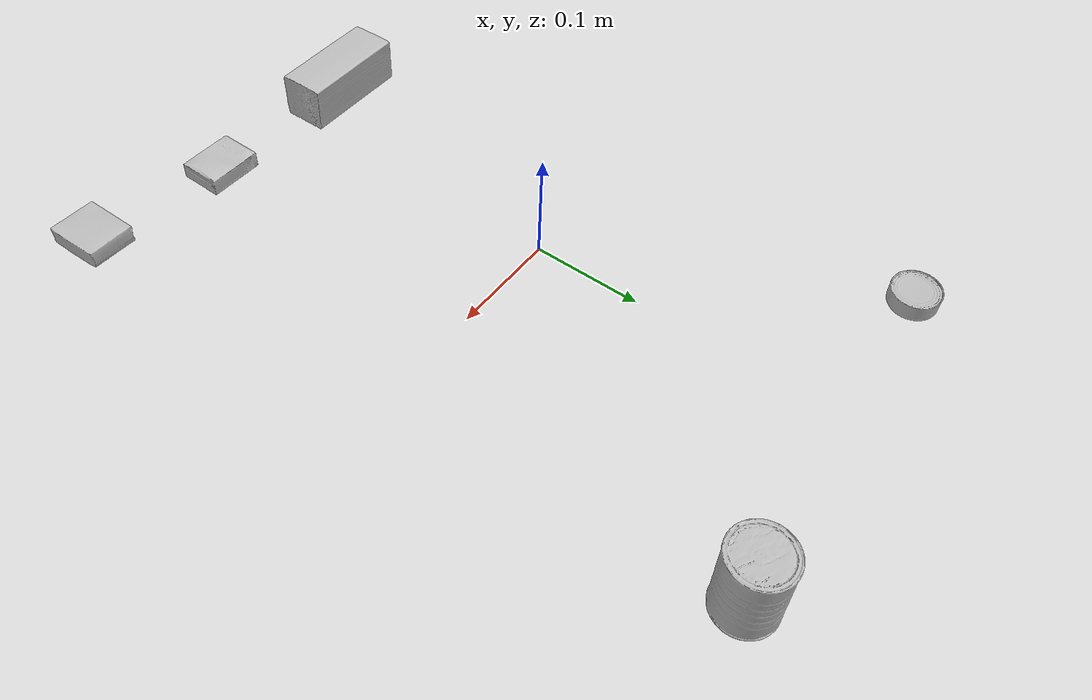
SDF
<?xml version="1.0" ?>
<sdf version="1.4">
  <world name="default">
    <light name="light1" type="point">
      <pose>0 0 1 0 0 0</pose>
      <diffuse>3 3 3 1</diffuse>
      <specular>3 3 3 1</specular>
    </light>
    <light name="light2" type="point">
      <pose>0 0.5 2 0 0 0</pose>
      <diffuse>1 1 1 1</diffuse>
      <specular>1 1 1 1</specular>
    </light>
    <light name="light3" type="point">
      <pose>0 0.5 2 0 0 0</pose>
      <diffuse>3 3 3 1</diffuse>
      <specular>3 3 3 1</specular>
    </light>
    <scene>
      <ambient>0.7 0.7 0.7</ambient>
    </scene>
    <model name="box1">
      <link name="link_box1">
        <collision name="default">
          <geometry>
            <mesh>
              <uri>model://pudding_box/collision_meshes/collision.obj</uri>
              <scale>0.5 0.5 0.5</scale>
            </mesh>
          </geometry>
          <surface>
            <friction>
              <ode>
                <mu>0.5</mu>
                <mu2>0.5</mu2>
              </ode>
            </friction>
          </surface>
        </collision>
        <visual name="default">
          <geometry>
            <mesh>
              <uri>model://pudding_box/visual_meshes/visual.dae</uri>
              <scale>0.5 0.5 0.5</scale>
            </mesh>
          </geometry>
        </visual>
        <inertial>
          <mass>0.03999795392155647</mass>
          <pose>0.00024474109522998333 0.0004033942532259971 -0.0002594413817860186 0.005213101299265121 -0.006603799659933957 0.020079830747700592</pose>
          <inertia>
            <ixx>1.1303907e-05</ixx>
            <iyy>7.605349e-06</iyy>
            <izz>1.6693173e-05</izz>
            <ixy>0</ixy>
            <ixz>0</ixz>
            <iyz>0</iyz>
          </inertia>
        </inertial>
      </link>
      <pose>0.22974133491516113 -0.3102520704269409 0.009862901642918587 0.022348696039720884 -0.011391630201809652 -9.534502178148313e-05</pose>
    </model>
    <model name="box2">
      <link name="link_box2">
        <collision name="default">
          <geometry>
            <mesh>
              <uri>model://cracker_box/collision_meshes/collision.obj</uri>
              <scale>0.25 0.25 0.25</scale>
            </mesh>
          </geometry>
          <surface>
            <friction>
              <ode>
                <mu>0.5</mu>
                <mu2>0.5</mu2>
              </ode>
            </friction>
          </surface>
        </collision>
        <visual name="default">
          <geometry>
            <mesh>
              <uri>model://cracker_box/visual_meshes/visual.dae</uri>
              <scale>0.25 0.25 0.25</scale>
            </mesh>
          </geometry>
        </visual>
        <inertial>
          <mass>0.046595875173807144</mass>
          <pose>0.00023660322767682374 6.358561950037256e-05 -0.0004257383698131889 -0.00031620768958073674 -0.011106491463008503 0.002546795235494827</pose>
          <inertia>
            <ixx>7.407444e-06</ixx>
            <iyy>1.2231146e-05</iyy>
            <izz>1.7454966e-05</izz>
            <ixy>0</ixy>
            <ixz>0</ixz>
            <iyz>0</iyz>
          </inertia>
        </inertial>
      </link>
      <pose>0.09993371367454529 -0.2898489832878113 0.009120453149080276 -0.011788122153615844 -0.007367107263715674 5.289334468071867e-05</pose>
    </model>
    <model name="box3">
      <link name="link_box3">
        <collision name="default">
          <geometry>
            <mesh>
              <uri>model://wood_block/collision_meshes/collision.obj</uri>
              <scale>0.5 0.5 0.5</scale>
            </mesh>
          </geometry>
          <surface>
            <friction>
              <ode>
                <mu>0.5</mu>
                <mu2>0.5</mu2>
              </ode>
            </friction>
          </surface>
        </collision>
        <visual name="default">
          <geometry>
            <mesh>
              <uri>model://wood_block/visual_meshes/visual.dae</uri>
              <scale>0.5 0.5 0.5</scale>
            </mesh>
          </geometry>
        </visual>
        <inertial>
          <mass>0.28600308299064636</mass>
          <pose>-2.9066577553749084e-06 -0.000285404734313488 0.00013204291462898254 -0.052207212015849935 -0.005192697210617926 -0.006861377963206113</pose>
          <inertia>
            <ixx>9.567885e-05</ixx>
            <iyy>0.00030224954</iyy>
            <izz>0.00030111894</izz>
            <ixy>0</ixy>
            <ixz>0</ixz>
            <iyz>0</iyz>
          </inertia>
        </inertial>
      </link>
      <pose>-0.05005824193358421 -0.2794343829154968 0.022629261016845703 -0.005208571911398284 0.005718724537587887 0.005303546326114952</pose>
    </model>
    <model name="can1">
      <link name="link_can1">
        <collision name="default">
          <geometry>
            <mesh>
              <uri>model://master_chef_can/collision_meshes/collision.obj</uri>
              <scale>0.5 0.5 0.5</scale>
            </mesh>
          </geometry>
          <surface>
            <friction>
              <ode>
                <mu>0.5</mu>
                <mu2>0.5</mu2>
              </ode>
            </friction>
          </surface>
        </collision>
        <visual name="default">
          <geometry>
            <mesh>
              <uri>model://master_chef_can/visual_meshes/visual.dae</uri>
              <scale>0.5 0.5 0.5</scale>
            </mesh>
          </geometry>
        </visual>
        <inertial>
          <mass>0.116209015250206</mass>
          <pose>-4.661964703700505e-05 1.3926850783718692e-07 -5.0799026212189347e-05 -0.001799512795725948 0.0006479254888938259 -0.6102617322721998</pose>
          <inertia>
            <ixx>6.820682e-05</ixx>
            <iyy>6.7704816e-05</iyy>
            <izz>3.768948e-05</izz>
            <ixy>0</ixy>
            <ixz>0</ixz>
            <iyz>0</iyz>
          </inertia>
        </inertial>
      </link>
      <pose>0.18012218177318573 0.30008429288864136 0.03530200198292732 -1.4427638813715003e-06 -7.518976270909699e-07 -3.5608586080916684e-07</pose>
    </model>
    <model name="can2">
      <link name="link_can2">
        <collision name="default">
          <geometry>
            <mesh>
              <uri>model://tuna_fish_can/collision_meshes/collision.obj</uri>
              <scale>0.5 0.5 0.5</scale>
            </mesh>
          </geometry>
          <surface>
            <friction>
              <ode>
                <mu>0.5</mu>
                <mu2>0.5</mu2>
              </ode>
            </friction>
          </surface>
        </collision>
        <visual name="default">
          <geometry>
            <mesh>
              <uri>model://tuna_fish_can/visual_meshes/visual.dae</uri>
              <scale>0.5 0.5 0.5</scale>
            </mesh>
          </geometry>
        </visual>
        <inertial>
          <mass>0.017585277557373047</mass>
          <pose>-2.03625786525663e-05 -7.2565176196803804e-06 -0.000526902440469712 -0.0017944765250671837 0.00017163661440384507 0.24054644931605637</pose>
          <inertia>
            <ixx>2.3775558e-06</ixx>
            <iyy>2.3676464e-06</iyy>
            <izz>4.0683376e-06</izz>
            <ixy>0</ixy>
            <ixz>0</ixz>
            <iyz>0</iyz>
          </inertia>
        </inertial>
      </link>
      <pose>-0.14002501964569092 0.2800227403640747 0.008520001545548439 -9.240465068499512e-10 2.7648635637911268e-09 -2.5828238140228204e-12</pose>
    </model>
  </world>
</sdf>
